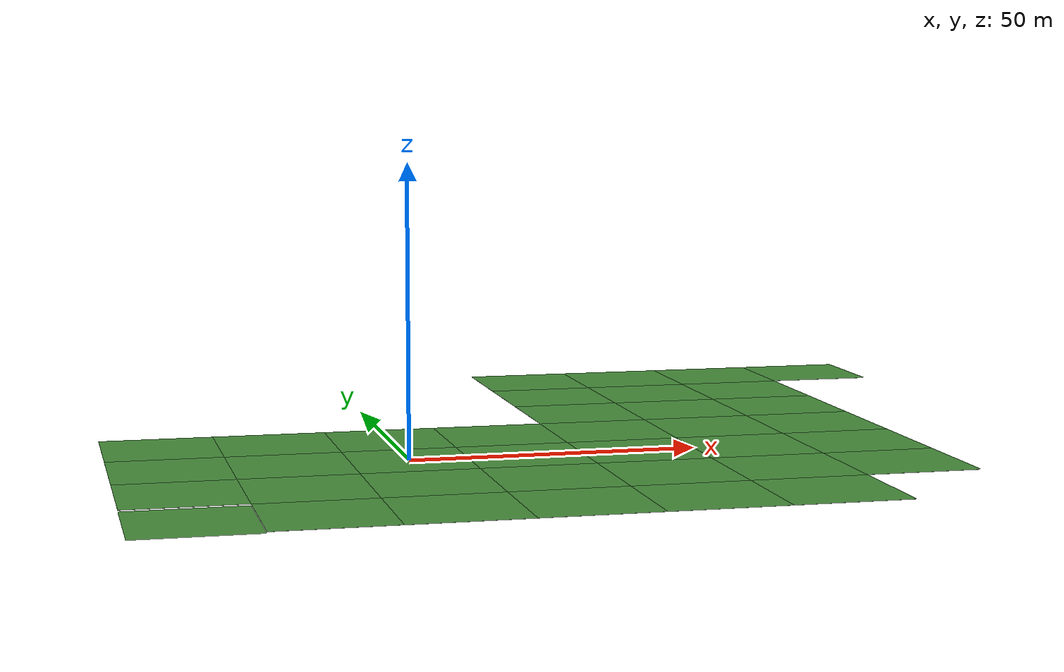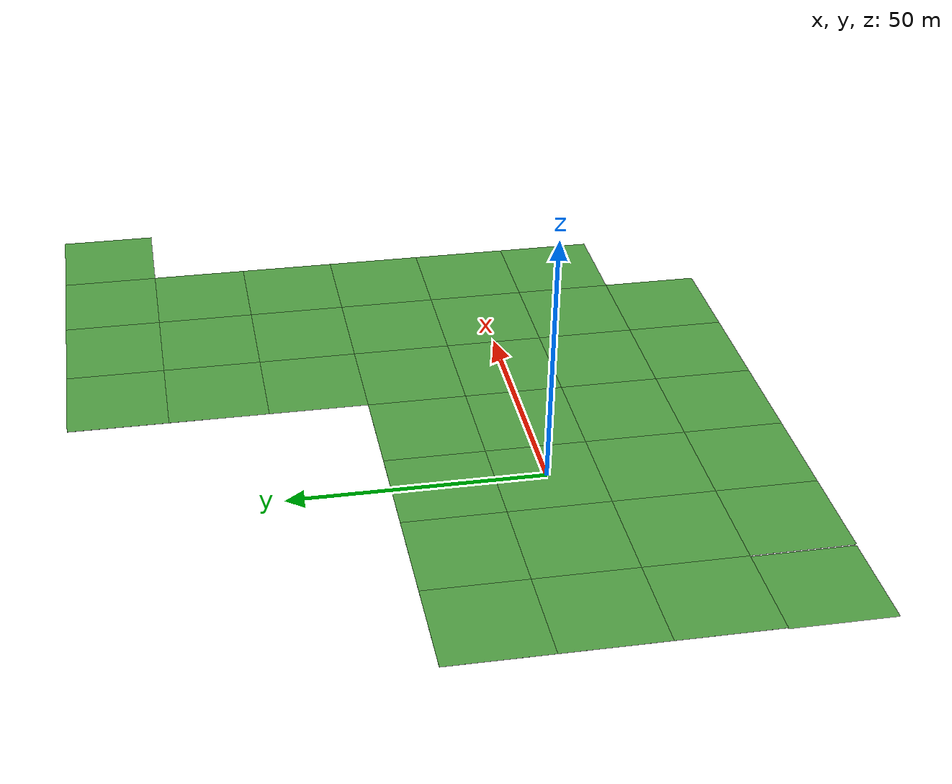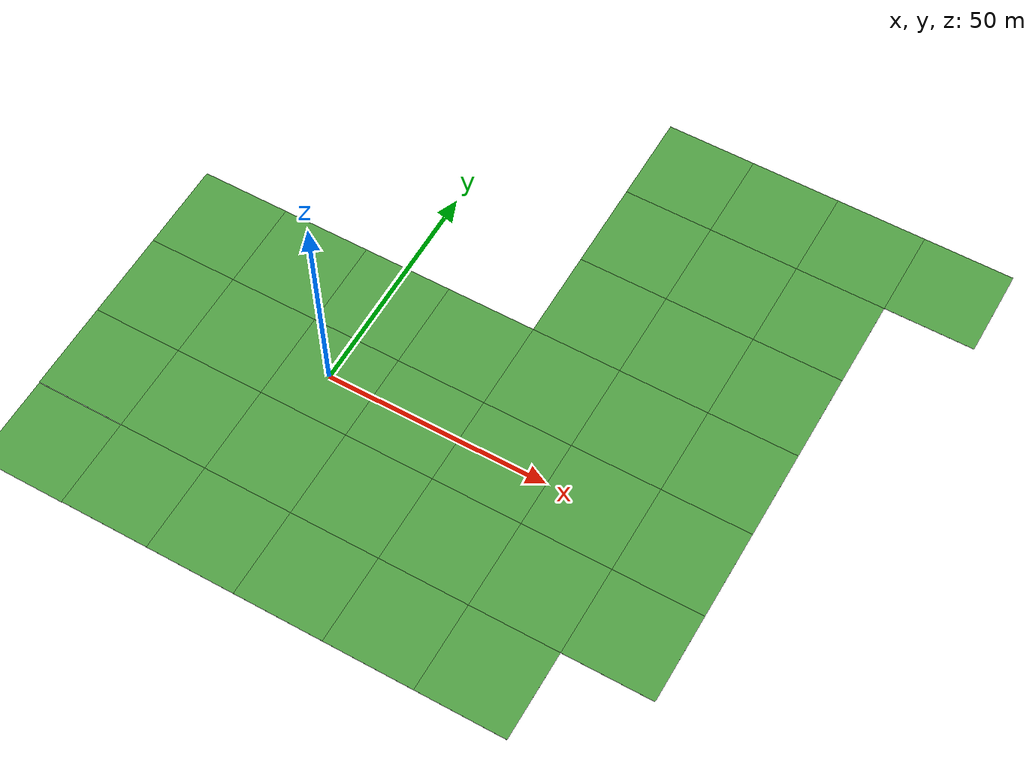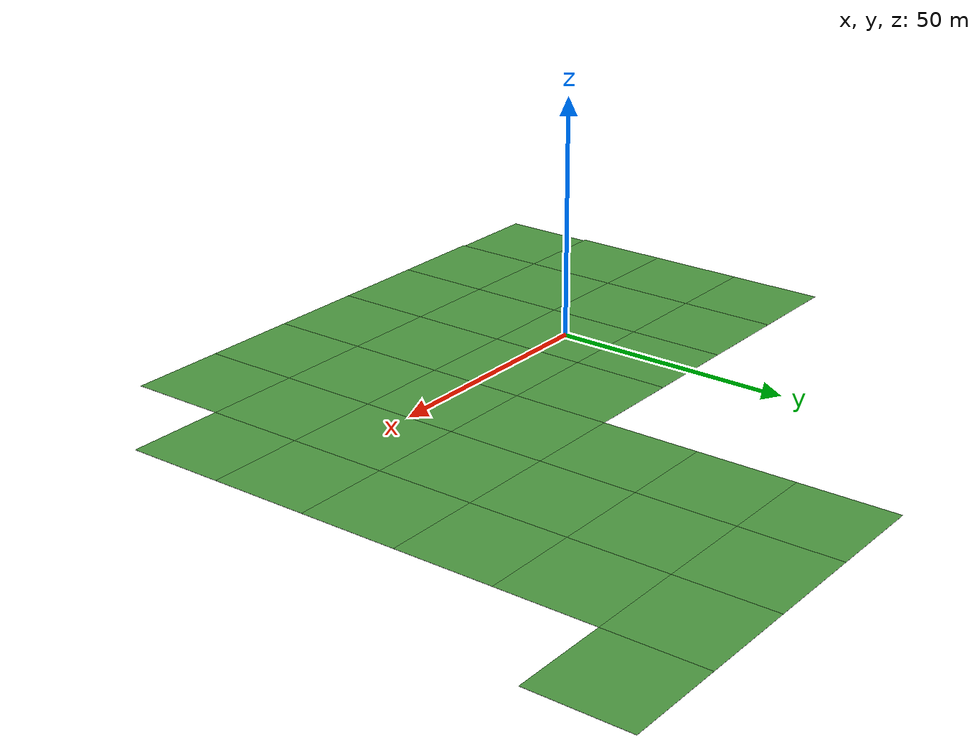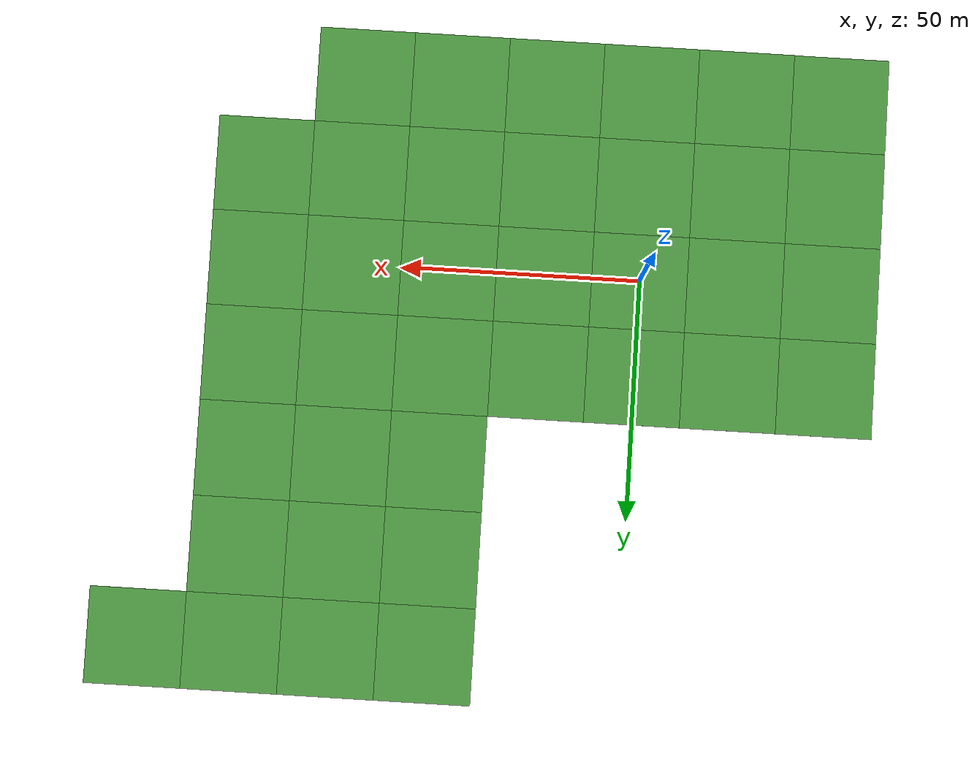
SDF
<?xml version="1.0" ?>
<sdf version="1.5">
  <model name="vrc_driving_terrain">
    <static>true</static>
    <link name="link">
    </link>
    <link name="grass_plane">
      <collision name="collision">
        <geometry>
          <plane>
            <normal>0 0 1</normal>
            <size>100 100</size>
          </plane>
        </geometry>
        <surface>
          <friction>
            <ode>
              <mu>0.5</mu>
              <mu2>.5</mu2>
            </ode>
          </friction>
        </surface>
      </collision>
      <visual name="visual_0">
        <pose>-40 -40 0 0 0 0</pose>
        <cast_shadows>false</cast_shadows>
        <geometry>
          <plane>
            <normal>0 0 1</normal>
            <size>20 20</size>
          </plane>
        </geometry>
        <material>
          <script>
            <uri>model://vrc_driving_terrain/materials/scripts</uri>
            <uri>model://vrc_driving_terrain/materials/textures</uri>
            <name>vrc/grass</name>
          </script>
        </material>
      </visual>
      <visual name="visual_1">
        <pose>-20 -40 0 0 0 0</pose>
        <cast_shadows>false</cast_shadows>
        <geometry>
          <plane>
            <normal>0 0 1</normal>
            <size>20 20</size>
          </plane>
        </geometry>
        <material>
          <script>
            <uri>model://vrc_driving_terrain/materials/scripts</uri>
            <uri>model://vrc_driving_terrain/materials/textures</uri>
            <name>vrc/grass</name>
          </script>
        </material>
      </visual>
      <visual name="visual_2">
        <pose>0 -40 0 0 0 0</pose>
        <cast_shadows>false</cast_shadows>
        <geometry>
          <plane>
            <normal>0 0 1</normal>
            <size>20 20</size>
          </plane>
        </geometry>
        <material>
          <script>
            <uri>model://vrc_driving_terrain/materials/scripts</uri>
            <uri>model://vrc_driving_terrain/materials/textures</uri>
            <name>vrc/grass</name>
          </script>
        </material>
      </visual>
      <visual name="visual_3">
        <pose>20 -40 0 0 0 0</pose>
        <cast_shadows>false</cast_shadows>
        <geometry>
          <plane>
            <normal>0 0 1</normal>
            <size>20 20</size>
          </plane>
        </geometry>
        <material>
          <script>
            <uri>model://vrc_driving_terrain/materials/scripts</uri>
            <uri>model://vrc_driving_terrain/materials/textures</uri>
            <name>vrc/grass</name>
          </script>
        </material>
      </visual>
      <visual name="visual_4">
        <pose>40 -40 0 0 0 0</pose>
        <cast_shadows>false</cast_shadows>
        <geometry>
          <plane>
            <normal>0 0 1</normal>
            <size>20 20</size>
          </plane>
        </geometry>
        <material>
          <script>
            <uri>model://vrc_driving_terrain/materials/scripts</uri>
            <uri>model://vrc_driving_terrain/materials/textures</uri>
            <name>vrc/grass</name>
          </script>
        </material>
      </visual>
      <visual name="visual_5">
        <pose>60 -40 0 0 0 0</pose>
        <cast_shadows>false</cast_shadows>
        <geometry>
          <plane>
            <normal>0 0 1</normal>
            <size>20 20</size>
          </plane>
        </geometry>
        <material>
          <script>
            <uri>model://vrc_driving_terrain/materials/scripts</uri>
            <uri>model://vrc_driving_terrain/materials/textures</uri>
            <name>vrc/grass</name>
          </script>
        </material>
      </visual>
      <visual name="visual_6">
        <pose>-40 -20 0 0 0 0</pose>
        <cast_shadows>false</cast_shadows>
        <geometry>
          <plane>
            <normal>0 0 1</normal>
            <size>20 20</size>
          </plane>
        </geometry>
        <material>
          <script>
            <uri>model://vrc_driving_terrain/materials/scripts</uri>
            <uri>model://vrc_driving_terrain/materials/textures</uri>
            <name>vrc/grass</name>
          </script>
        </material>
      </visual>
      <visual name="visual_7">
        <pose>-20 -20 0 0 0 0</pose>
        <cast_shadows>false</cast_shadows>
        <geometry>
          <plane>
            <normal>0 0 1</normal>
            <size>20 20</size>
          </plane>
        </geometry>
        <material>
          <script>
            <uri>model://vrc_driving_terrain/materials/scripts</uri>
            <uri>model://vrc_driving_terrain/materials/textures</uri>
            <name>vrc/grass</name>
          </script>
        </material>
      </visual>
      <visual name="visual_8">
        <pose>0 -20 0 0 0 0</pose>
        <cast_shadows>false</cast_shadows>
        <geometry>
          <plane>
            <normal>0 0 1</normal>
            <size>20 20</size>
          </plane>
        </geometry>
        <material>
          <script>
            <uri>model://vrc_driving_terrain/materials/scripts</uri>
            <uri>model://vrc_driving_terrain/materials/textures</uri>
            <name>vrc/grass</name>
          </script>
        </material>
      </visual>
      <visual name="visual_9">
        <pose>20 -20 0 0 0 0</pose>
        <cast_shadows>false</cast_shadows>
        <geometry>
          <plane>
            <normal>0 0 1</normal>
            <size>20 20</size>
          </plane>
        </geometry>
        <material>
          <script>
            <uri>model://vrc_driving_terrain/materials/scripts</uri>
            <uri>model://vrc_driving_terrain/materials/textures</uri>
            <name>vrc/grass</name>
          </script>
        </material>
      </visual>
      <visual name="visual_10">
        <pose>40 -20 0 0 0 0</pose>
        <cast_shadows>false</cast_shadows>
        <geometry>
          <plane>
            <normal>0 0 1</normal>
            <size>20 20</size>
          </plane>
        </geometry>
        <material>
          <script>
            <uri>model://vrc_driving_terrain/materials/scripts</uri>
            <uri>model://vrc_driving_terrain/materials/textures</uri>
            <name>vrc/grass</name>
          </script>
        </material>
      </visual>
      <visual name="visual_11">
        <pose>60 -20 0 0 0 0</pose>
        <cast_shadows>false</cast_shadows>
        <geometry>
          <plane>
            <normal>0 0 1</normal>
            <size>20 20</size>
          </plane>
        </geometry>
        <material>
          <script>
            <uri>model://vrc_driving_terrain/materials/scripts</uri>
            <uri>model://vrc_driving_terrain/materials/textures</uri>
            <name>vrc/grass</name>
          </script>
        </material>
      </visual>
      <visual name="visual_12">
        <pose>80 -20 0 0 0 0</pose>
        <cast_shadows>false</cast_shadows>
        <geometry>
          <plane>
            <normal>0 0 1</normal>
            <size>20 20</size>
          </plane>
        </geometry>
        <material>
          <script>
            <uri>model://vrc_driving_terrain/materials/scripts</uri>
            <uri>model://vrc_driving_terrain/materials/textures</uri>
            <name>vrc/grass</name>
          </script>
        </material>
      </visual>
      <visual name="visual_13">
        <pose>-40 0 0 0 0 0</pose>
        <cast_shadows>false</cast_shadows>
        <geometry>
          <plane>
            <normal>0 0 1</normal>
            <size>20 20</size>
          </plane>
        </geometry>
        <material>
          <script>
            <uri>model://vrc_driving_terrain/materials/scripts</uri>
            <uri>model://vrc_driving_terrain/materials/textures</uri>
            <name>vrc/grass</name>
          </script>
        </material>
      </visual>
      <visual name="visual_14">
        <pose>-20 0 0 0 0 0</pose>
        <cast_shadows>false</cast_shadows>
        <geometry>
          <plane>
            <normal>0 0 1</normal>
            <size>20 20</size>
          </plane>
        </geometry>
        <material>
          <script>
            <uri>model://vrc_driving_terrain/materials/scripts</uri>
            <uri>model://vrc_driving_terrain/materials/textures</uri>
            <name>vrc/grass</name>
          </script>
        </material>
      </visual>
      <visual name="visual_15">
        <pose>0 0 0 0 0 0</pose>
        <cast_shadows>false</cast_shadows>
        <geometry>
          <plane>
            <normal>0 0 1</normal>
            <size>20 20</size>
          </plane>
        </geometry>
        <material>
          <script>
            <uri>model://vrc_driving_terrain/materials/scripts</uri>
            <uri>model://vrc_driving_terrain/materials/textures</uri>
            <name>vrc/grass</name>
          </script>
        </material>
      </visual>
      <visual name="visual_16">
        <pose>20 0 0 0 0 0</pose>
        <cast_shadows>false</cast_shadows>
        <geometry>
          <plane>
            <normal>0 0 1</normal>
            <size>20 20</size>
          </plane>
        </geometry>
        <material>
          <script>
            <uri>model://vrc_driving_terrain/materials/scripts</uri>
            <uri>model://vrc_driving_terrain/materials/textures</uri>
            <name>vrc/grass</name>
          </script>
        </material>
      </visual>
      <visual name="visual_17">
        <pose>40 0 0 0 0 0</pose>
        <cast_shadows>false</cast_shadows>
        <geometry>
          <plane>
            <normal>0 0 1</normal>
            <size>20 20</size>
          </plane>
        </geometry>
        <material>
          <script>
            <uri>model://vrc_driving_terrain/materials/scripts</uri>
            <uri>model://vrc_driving_terrain/materials/textures</uri>
            <name>vrc/grass</name>
          </script>
        </material>
      </visual>
      <visual name="visual_18">
        <pose>60 0 0 0 0 0</pose>
        <cast_shadows>false</cast_shadows>
        <geometry>
          <plane>
            <normal>0 0 1</normal>
            <size>20 20</size>
          </plane>
        </geometry>
        <material>
          <script>
            <uri>model://vrc_driving_terrain/materials/scripts</uri>
            <uri>model://vrc_driving_terrain/materials/textures</uri>
            <name>vrc/grass</name>
          </script>
        </material>
      </visual>
      <visual name="visual_19">
        <pose>80 0 0 0 0 0</pose>
        <cast_shadows>false</cast_shadows>
        <geometry>
          <plane>
            <normal>0 0 1</normal>
            <size>20 20</size>
          </plane>
        </geometry>
        <material>
          <script>
            <uri>model://vrc_driving_terrain/materials/scripts</uri>
            <uri>model://vrc_driving_terrain/materials/textures</uri>
            <name>vrc/grass</name>
          </script>
        </material>
      </visual>
      <visual name="visual_22">
        <pose>-40 20 0 0 0 0</pose>
        <cast_shadows>false</cast_shadows>
        <geometry>
          <plane>
            <normal>0 0 1</normal>
            <size>20 20</size>
          </plane>
        </geometry>
        <material>
          <script>
            <uri>model://vrc_driving_terrain/materials/scripts</uri>
            <uri>model://vrc_driving_terrain/materials/textures</uri>
            <name>vrc/grass</name>
          </script>
        </material>
      </visual>
      <visual name="visual_23">
        <pose>-20 20 0 0 0 0</pose>
        <cast_shadows>false</cast_shadows>
        <geometry>
          <plane>
            <normal>0 0 1</normal>
            <size>20 20</size>
          </plane>
        </geometry>
        <material>
          <script>
            <uri>model://vrc_driving_terrain/materials/scripts</uri>
            <uri>model://vrc_driving_terrain/materials/textures</uri>
            <name>vrc/grass</name>
          </script>
        </material>
      </visual>
      <visual name="visual_24">
        <pose>0 20 0 0 0 0</pose>
        <cast_shadows>false</cast_shadows>
        <geometry>
          <plane>
            <normal>0 0 1</normal>
            <size>20 20</size>
          </plane>
        </geometry>
        <material>
          <script>
            <uri>model://vrc_driving_terrain/materials/scripts</uri>
            <uri>model://vrc_driving_terrain/materials/textures</uri>
            <name>vrc/grass</name>
          </script>
        </material>
      </visual>
      <visual name="visual_25">
        <pose>20 20 0 0 0 0</pose>
        <cast_shadows>false</cast_shadows>
        <geometry>
          <plane>
            <normal>0 0 1</normal>
            <size>20 20</size>
          </plane>
        </geometry>
        <material>
          <script>
            <uri>model://vrc_driving_terrain/materials/scripts</uri>
            <uri>model://vrc_driving_terrain/materials/textures</uri>
            <name>vrc/grass</name>
          </script>
        </material>
      </visual>
      <visual name="visual_26">
        <pose>40 20 0 0 0 0</pose>
        <cast_shadows>false</cast_shadows>
        <geometry>
          <plane>
            <normal>0 0 1</normal>
            <size>20 20</size>
          </plane>
        </geometry>
        <material>
          <script>
            <uri>model://vrc_driving_terrain/materials/scripts</uri>
            <uri>model://vrc_driving_terrain/materials/textures</uri>
            <name>vrc/grass</name>
          </script>
        </material>
      </visual>
      <visual name="visual_27">
        <pose>60 20 0 0 0 0</pose>
        <cast_shadows>false</cast_shadows>
        <geometry>
          <plane>
            <normal>0 0 1</normal>
            <size>20 20</size>
          </plane>
        </geometry>
        <material>
          <script>
            <uri>model://vrc_driving_terrain/materials/scripts</uri>
            <uri>model://vrc_driving_terrain/materials/textures</uri>
            <name>vrc/grass</name>
          </script>
        </material>
      </visual>
      <visual name="visual_28">
        <pose>80 20 0 0 0 0</pose>
        <cast_shadows>false</cast_shadows>
        <geometry>
          <plane>
            <normal>0 0 1</normal>
            <size>20 20</size>
          </plane>
        </geometry>
        <material>
          <script>
            <uri>model://vrc_driving_terrain/materials/scripts</uri>
            <uri>model://vrc_driving_terrain/materials/textures</uri>
            <name>vrc/grass</name>
          </script>
        </material>
      </visual>
      <visual name="visual_32">
        <pose>40 40 0 0 0 0</pose>
        <cast_shadows>false</cast_shadows>
        <geometry>
          <plane>
            <normal>0 0 1</normal>
            <size>20 20</size>
          </plane>
        </geometry>
        <material>
          <script>
            <uri>model://vrc_driving_terrain/materials/scripts</uri>
            <uri>model://vrc_driving_terrain/materials/textures</uri>
            <name>vrc/grass</name>
          </script>
        </material>
      </visual>
      <visual name="visual_33">
        <pose>60 40 0 0 0 0</pose>
        <cast_shadows>false</cast_shadows>
        <geometry>
          <plane>
            <normal>0 0 1</normal>
            <size>20 20</size>
          </plane>
        </geometry>
        <material>
          <script>
            <uri>model://vrc_driving_terrain/materials/scripts</uri>
            <uri>model://vrc_driving_terrain/materials/textures</uri>
            <name>vrc/grass</name>
          </script>
        </material>
      </visual>
      <visual name="visual_34">
        <pose>80 40 0 0 0 0</pose>
        <cast_shadows>false</cast_shadows>
        <geometry>
          <plane>
            <normal>0 0 1</normal>
            <size>20 20</size>
          </plane>
        </geometry>
        <material>
          <script>
            <uri>model://vrc_driving_terrain/materials/scripts</uri>
            <uri>model://vrc_driving_terrain/materials/textures</uri>
            <name>vrc/grass</name>
          </script>
        </material>
      </visual>
      <visual name="visual_39">
        <pose>40 60 0 0 0 0</pose>
        <cast_shadows>false</cast_shadows>
        <geometry>
          <plane>
            <normal>0 0 1</normal>
            <size>20 20</size>
          </plane>
        </geometry>
        <material>
          <script>
            <uri>model://vrc_driving_terrain/materials/scripts</uri>
            <uri>model://vrc_driving_terrain/materials/textures</uri>
            <name>vrc/grass</name>
          </script>
        </material>
      </visual>
      <visual name="visual_40">
        <pose>60 60 0 0 0 0</pose>
        <cast_shadows>false</cast_shadows>
        <geometry>
          <plane>
            <normal>0 0 1</normal>
            <size>20 20</size>
          </plane>
        </geometry>
        <material>
          <script>
            <uri>model://vrc_driving_terrain/materials/scripts</uri>
            <uri>model://vrc_driving_terrain/materials/textures</uri>
            <name>vrc/grass</name>
          </script>
        </material>
      </visual>
      <visual name="visual_41">
        <pose>80 60 0 0 0 0</pose>
        <cast_shadows>false</cast_shadows>
        <geometry>
          <plane>
            <normal>0 0 1</normal>
            <size>20 20</size>
          </plane>
        </geometry>
        <material>
          <script>
            <uri>model://vrc_driving_terrain/materials/scripts</uri>
            <uri>model://vrc_driving_terrain/materials/textures</uri>
            <name>vrc/grass</name>
          </script>
        </material>
      </visual>
      <visual name="visual_46">
        <pose>40 80 0 0 0 0</pose>
        <cast_shadows>false</cast_shadows>
        <geometry>
          <plane>
            <normal>0 0 1</normal>
            <size>20 20</size>
          </plane>
        </geometry>
        <material>
          <script>
            <uri>model://vrc_driving_terrain/materials/scripts</uri>
            <uri>model://vrc_driving_terrain/materials/textures</uri>
            <name>vrc/grass</name>
          </script>
        </material>
      </visual>
      <visual name="visual_47">
        <pose>60 80 0 0 0 0</pose>
        <cast_shadows>false</cast_shadows>
        <geometry>
          <plane>
            <normal>0 0 1</normal>
            <size>20 20</size>
          </plane>
        </geometry>
        <material>
          <script>
            <uri>model://vrc_driving_terrain/materials/scripts</uri>
            <uri>model://vrc_driving_terrain/materials/textures</uri>
            <name>vrc/grass</name>
          </script>
        </material>
      </visual>
      <visual name="visual_48">
        <pose>80 80 0 0 0 0</pose>
        <cast_shadows>false</cast_shadows>
        <geometry>
          <plane>
            <normal>0 0 1</normal>
            <size>20 20</size>
          </plane>
        </geometry>
        <material>
          <script>
            <uri>model://vrc_driving_terrain/materials/scripts</uri>
            <uri>model://vrc_driving_terrain/materials/textures</uri>
            <name>vrc/grass</name>
          </script>
        </material>
      </visual>
      <visual name="visual_49">
        <pose>100 80 0 0 0 0</pose>
        <cast_shadows>false</cast_shadows>
        <geometry>
          <plane>
            <normal>0 0 1</normal>
            <size>20 20</size>
          </plane>
        </geometry>
        <material>
          <script>
            <uri>model://vrc_driving_terrain/materials/scripts</uri>
            <uri>model://vrc_driving_terrain/materials/textures</uri>
            <name>vrc/grass</name>
          </script>
        </material>
      </visual>
    </link>
  </model>
</sdf>
